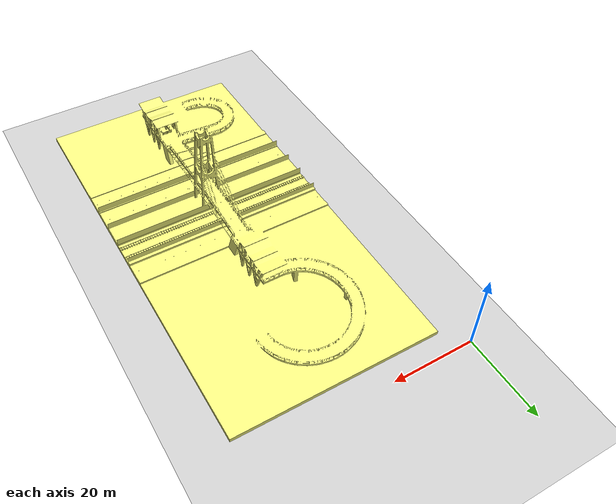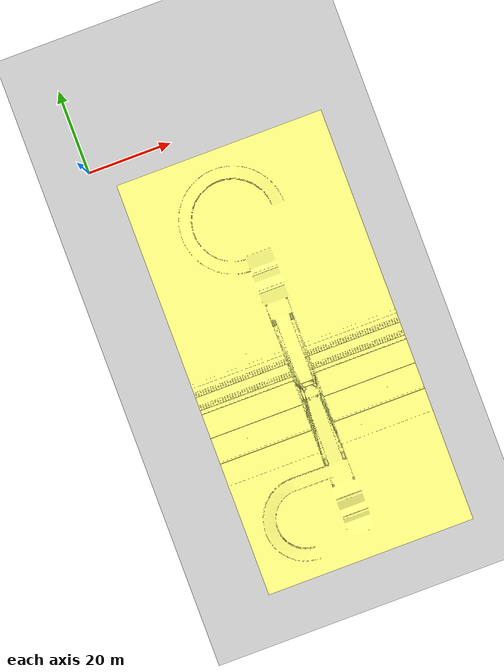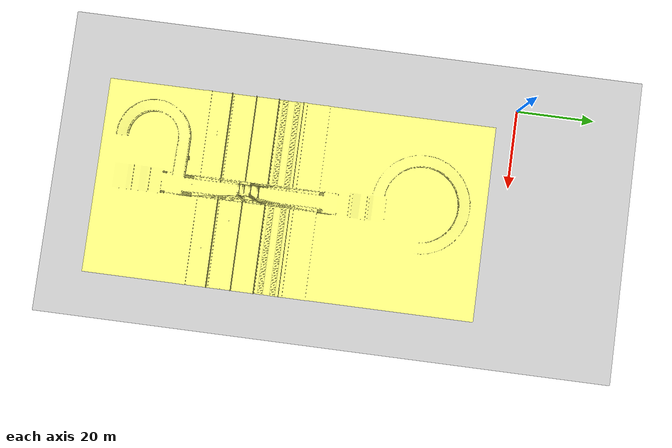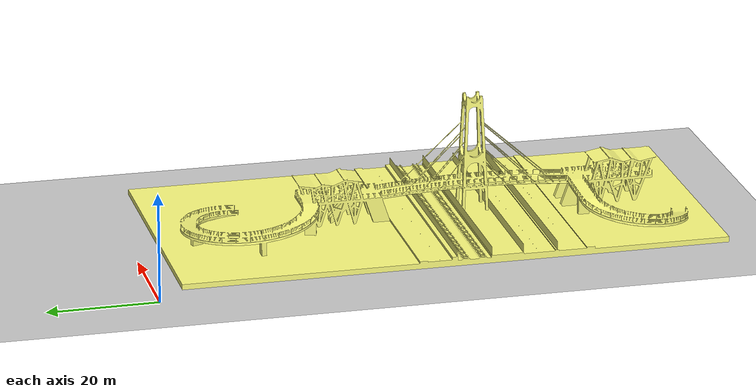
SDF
<?xml version="1.0" ?>
<sdf version="1.5">
  <world name="default">
    <!-- A global light source -->
    <include>
      <uri>model://sun</uri>
    </include>
    <!-- A ground plane -->
    <include>
      <uri>model://ground_plane</uri>
    </include>
    <include>
      <uri>model://asphalt_plane</uri>
    </include>
    <include>
      <uri>model://bridge_v1</uri>
    </include>
    <physics name='default_physics' default='0' type='ode'>
      <gravity>0 0 -9.8066</gravity>
      <ode>
        <solver>
          <type>quick</type>
          <iters>50</iters>
          <sor>1.0</sor>
          <use_dynamic_moi_rescaling>0</use_dynamic_moi_rescaling>
        </solver>
        <constraints>
          <cfm>0</cfm>
          <erp>0.2</erp>
          <contact_max_correcting_vel>100</contact_max_correcting_vel>
          <contact_surface_layer>0.001</contact_surface_layer>
        </constraints>
      </ode>
      <max_step_size>0.004</max_step_size>
      <real_time_factor>1</real_time_factor>
      <real_time_update_rate>250</real_time_update_rate>
      <magnetic_field>6.0e-6 2.3e-5 -4.2e-5</magnetic_field>
    </physics>
  </world>
</sdf>

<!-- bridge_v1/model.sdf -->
<sdf version='1.7'>
  <model name='bridge_v1'>
    <static>true</static>
    <pose>5 -5 0 0 0 0</pose>
    <link name='link_0'>
      <inertial>
        <mass>10</mass>
        <inertia>
          <ixx>0.166667</ixx>
          <ixy>0</ixy>
          <ixz>0</ixz>
          <iyy>0.166667</iyy>
          <iyz>0</iyz>
          <izz>0.166667</izz>
        </inertia>
      </inertial>
      <pose>-0 0 0 1.57079632 -0 0</pose>
      <visual name='visual'>
        <pose>0 0 0 0 -0 0</pose>
        <geometry>
          <mesh>
            <uri>model://bridge_v1/meshes/bridge.STL</uri>
            <scale>0.01 0.01 0.01</scale>
          </mesh>
        </geometry>
        <material>
          <ambient>1 1 0.5 1</ambient>
          <diffuse>1 1 0.5 1</diffuse>
        </material>
        <transparency>0</transparency>
        <cast_shadows>1</cast_shadows>
      </visual>
      <collision name='collision'>
        <laser_retro>0</laser_retro>
        <max_contacts>10</max_contacts>
        <pose>0 0 0 0 -0 0</pose>
        <geometry>
          <mesh>
            <uri>model://bridge_v1/meshes/bridge.STL</uri>
            <scale>0.01 0.01 0.01</scale>
          </mesh>
        </geometry>
        <surface>
          <friction>
            <ode>
              <mu>1</mu>
              <mu2>1</mu2>
              <fdir1>0 0 0</fdir1>
              <slip1>0</slip1>
              <slip2>0</slip2>
            </ode>
            <torsional>
              <coefficient>1</coefficient>
              <patch_radius>0</patch_radius>
              <surface_radius>0</surface_radius>
              <use_patch_radius>1</use_patch_radius>
              <ode>
                <slip>0</slip>
              </ode>
            </torsional>
          </friction>
          <bounce>
            <restitution_coefficient>0</restitution_coefficient>
            <threshold>1e+06</threshold>
          </bounce>
          <contact>
            <collide_without_contact>0</collide_without_contact>
            <collide_without_contact_bitmask>1</collide_without_contact_bitmask>
            <collide_bitmask>1</collide_bitmask>
            <ode>
              <soft_cfm>0</soft_cfm>
              <soft_erp>0.2</soft_erp>
              <kp>1e+13</kp>
              <kd>1</kd>
              <max_vel>0.01</max_vel>
              <min_depth>0</min_depth>
            </ode>
            <bullet>
              <split_impulse>1</split_impulse>
              <split_impulse_penetration_threshold>-0.01</split_impulse_penetration_threshold>
              <soft_cfm>0</soft_cfm>
              <soft_erp>0.2</soft_erp>
              <kp>1e+13</kp>
              <kd>1</kd>
            </bullet>
          </contact>
        </surface>
      </collision>
    </link>
    <allow_auto_disable>1</allow_auto_disable>
  </model>
</sdf>
